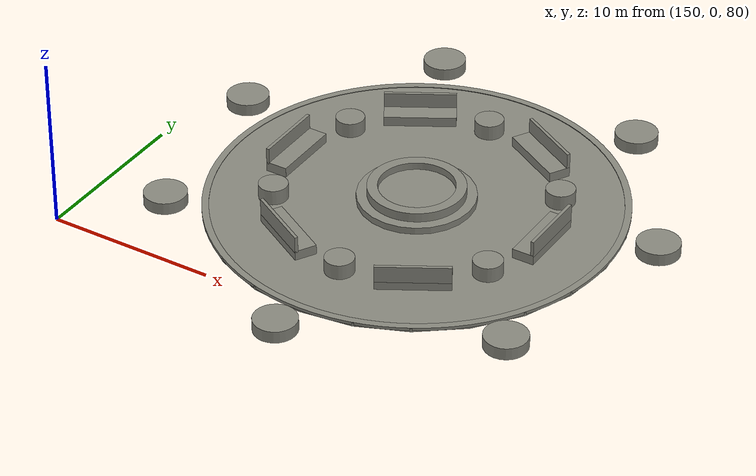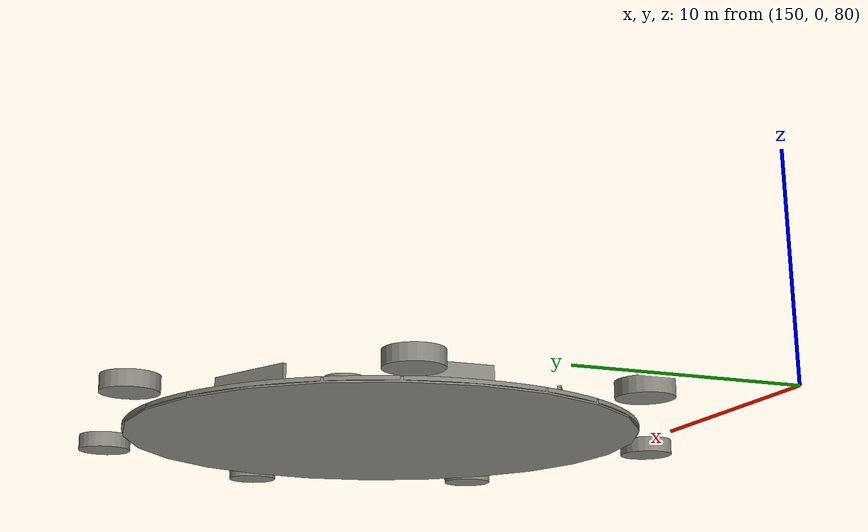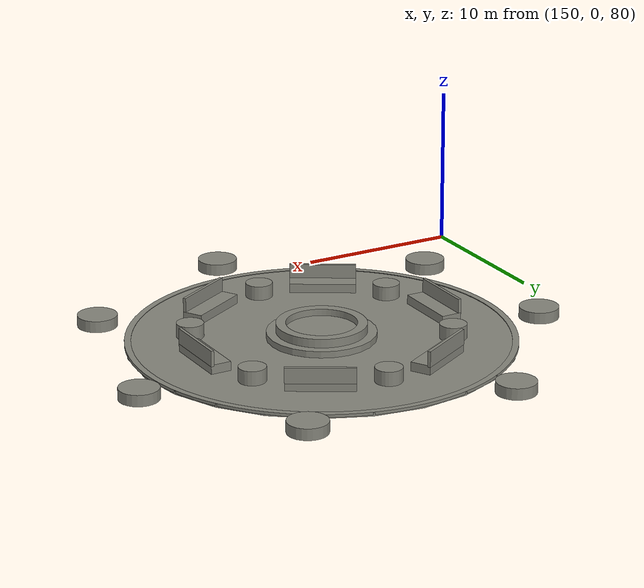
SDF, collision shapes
<?xml version='1.0' encoding='utf-8'?>
<sdf version="1.9">
  <model name="estate_fire_lounge">
    <static>true</static>
    <link name="structure">
      <visual name="visual_paving">
        <geometry>
          <mesh>
            <uri>model://estate_fire_lounge/meshes/visual/paving.dae</uri>
          </mesh>
        </geometry>
        <material>
          <ambient>0.53 0.53 0.49 1</ambient>
          <diffuse>0.53 0.53 0.49 1</diffuse>
          <specular>0.15 0.15 0.15 1</specular>
          <pbr>
            <metal>
              <roughness>0.8</roughness>
              <metalness>0.0</metalness>
            </metal>
          </pbr>
        </material>
      </visual>
      <visual name="visual_stone">
        <geometry>
          <mesh>
            <uri>model://estate_fire_lounge/meshes/visual/stone.dae</uri>
          </mesh>
        </geometry>
        <material>
          <ambient>0.42 0.43 0.39 1</ambient>
          <diffuse>0.42 0.43 0.39 1</diffuse>
          <specular>0.15 0.15 0.15 1</specular>
          <pbr>
            <metal>
              <roughness>0.8</roughness>
              <metalness>0.0</metalness>
            </metal>
          </pbr>
        </material>
      </visual>
      <visual name="visual_ivory">
        <geometry>
          <mesh>
            <uri>model://estate_fire_lounge/meshes/visual/ivory.dae</uri>
          </mesh>
        </geometry>
        <material>
          <ambient>0.88 0.87 0.81 1</ambient>
          <diffuse>0.88 0.87 0.81 1</diffuse>
          <specular>0.15 0.15 0.15 1</specular>
          <pbr>
            <metal>
              <roughness>0.8</roughness>
              <metalness>0.0</metalness>
            </metal>
          </pbr>
        </material>
      </visual>
      <visual name="visual_charcoal">
        <geometry>
          <mesh>
            <uri>model://estate_fire_lounge/meshes/visual/charcoal.dae</uri>
          </mesh>
        </geometry>
        <material>
          <ambient>0.045 0.054 0.06 1</ambient>
          <diffuse>0.045 0.054 0.06 1</diffuse>
          <specular>0.15 0.15 0.15 1</specular>
          <pbr>
            <metal>
              <roughness>0.8</roughness>
              <metalness>0.0</metalness>
            </metal>
          </pbr>
        </material>
      </visual>
      <visual name="visual_wood">
        <geometry>
          <mesh>
            <uri>model://estate_fire_lounge/meshes/visual/wood.dae</uri>
          </mesh>
        </geometry>
        <material>
          <ambient>0.3 0.18 0.095 1</ambient>
          <diffuse>0.3 0.18 0.095 1</diffuse>
          <specular>0.15 0.15 0.15 1</specular>
          <pbr>
            <metal>
              <roughness>0.8</roughness>
              <metalness>0.0</metalness>
            </metal>
          </pbr>
        </material>
      </visual>
      <visual name="visual_dark_fabric">
        <geometry>
          <mesh>
            <uri>model://estate_fire_lounge/meshes/visual/dark_fabric.dae</uri>
          </mesh>
        </geometry>
        <material>
          <ambient>0.095 0.12 0.14 1</ambient>
          <diffuse>0.095 0.12 0.14 1</diffuse>
          <specular>0.15 0.15 0.15 1</specular>
          <pbr>
            <metal>
              <roughness>0.8</roughness>
              <metalness>0.0</metalness>
            </metal>
          </pbr>
        </material>
      </visual>
      <visual name="visual_fabric">
        <geometry>
          <mesh>
            <uri>model://estate_fire_lounge/meshes/visual/fabric.dae</uri>
          </mesh>
        </geometry>
        <material>
          <ambient>0.7 0.64 0.52 1</ambient>
          <diffuse>0.7 0.64 0.52 1</diffuse>
          <specular>0.15 0.15 0.15 1</specular>
          <pbr>
            <metal>
              <roughness>0.8</roughness>
              <metalness>0.0</metalness>
            </metal>
          </pbr>
        </material>
      </visual>
      <visual name="visual_fire">
        <geometry>
          <mesh>
            <uri>model://estate_fire_lounge/meshes/visual/fire.dae</uri>
          </mesh>
        </geometry>
        <material>
          <ambient>1 0.34 0.025 1</ambient>
          <diffuse>1 0.34 0.025 1</diffuse>
          <specular>0.15 0.15 0.15 1</specular>
          <emissive>0.55 0.187 0.01375 1</emissive>
          <pbr>
            <metal>
              <roughness>0.8</roughness>
              <metalness>0.0</metalness>
            </metal>
          </pbr>
        </material>
      </visual>
      <visual name="visual_grass_dark">
        <geometry>
          <mesh>
            <uri>model://estate_fire_lounge/meshes/visual/grass_dark.dae</uri>
          </mesh>
        </geometry>
        <material>
          <ambient>0.14 0.22 0.085 1</ambient>
          <diffuse>0.14 0.22 0.085 1</diffuse>
          <specular>0.15 0.15 0.15 1</specular>
          <pbr>
            <metal>
              <roughness>0.8</roughness>
              <metalness>0.0</metalness>
            </metal>
          </pbr>
        </material>
      </visual>
      <visual name="visual_leaf2">
        <geometry>
          <mesh>
            <uri>model://estate_fire_lounge/meshes/visual/leaf2.dae</uri>
          </mesh>
        </geometry>
        <material>
          <ambient>0.15 0.235 0.105 1</ambient>
          <diffuse>0.15 0.235 0.105 1</diffuse>
          <specular>0.15 0.15 0.15 1</specular>
          <pbr>
            <metal>
              <roughness>0.8</roughness>
              <metalness>0.0</metalness>
            </metal>
          </pbr>
        </material>
      </visual>
      <visual name="visual_rock">
        <geometry>
          <mesh>
            <uri>model://estate_fire_lounge/meshes/visual/rock.dae</uri>
          </mesh>
        </geometry>
        <material>
          <ambient>0.34 0.355 0.32 1</ambient>
          <diffuse>0.34 0.355 0.32 1</diffuse>
          <specular>0.15 0.15 0.15 1</specular>
          <pbr>
            <metal>
              <roughness>0.8</roughness>
              <metalness>0.0</metalness>
            </metal>
          </pbr>
        </material>
      </visual>
      <visual name="visual_white">
        <geometry>
          <mesh>
            <uri>model://estate_fire_lounge/meshes/visual/white.dae</uri>
          </mesh>
        </geometry>
        <material>
          <ambient>0.93 0.93 0.89 1</ambient>
          <diffuse>0.93 0.93 0.89 1</diffuse>
          <specular>0.15 0.15 0.15 1</specular>
          <pbr>
            <metal>
              <roughness>0.8</roughness>
              <metalness>0.0</metalness>
            </metal>
          </pbr>
        </material>
      </visual>
      <collision name="fire_lounge_terrace">
        <geometry>
          <cylinder>
            <radius>12</radius>
            <length>0.22</length>
          </cylinder>
        </geometry>
        <pose>166 12 80.05 0 0 0</pose>
      </collision>
      <collision name="lounge_border">
        <geometry>
          <mesh>
            <uri>model://estate_fire_lounge/meshes/collision/lounge_border.dae</uri>
          </mesh>
        </geometry>
      </collision>
      <collision name="fire_pit_plinth">
        <geometry>
          <cylinder>
            <radius>3.4</radius>
            <length>0.5</length>
          </cylinder>
        </geometry>
        <pose>166 12 80.32 0 0 0</pose>
      </collision>
      <collision name="fire_pit_bowl">
        <geometry>
          <mesh>
            <uri>model://estate_fire_lounge/meshes/collision/fire_pit_bowl.dae</uri>
          </mesh>
        </geometry>
      </collision>
      <collision name="fire_pit_coals">
        <geometry>
          <cylinder>
            <radius>2.2</radius>
            <length>0.18</length>
          </cylinder>
        </geometry>
        <pose>166 12 80.61 0 0 0</pose>
      </collision>
      <collision name="fireside_sofa_0_base">
        <geometry>
          <box>
            <size>4.2 1.3 0.58</size>
          </box>
        </geometry>
        <pose>174 12 80.51 0 0 -1.5708</pose>
      </collision>
      <collision name="fireside_sofa_0_back">
        <geometry>
          <box>
            <size>4.2 0.19 1</size>
          </box>
        </geometry>
        <pose>174.56 12 81.2 0 0 -1.5708</pose>
      </collision>
      <collision name="fireside_table_0">
        <geometry>
          <cylinder>
            <radius>0.85</radius>
            <length>0.9</length>
          </cylinder>
        </geometry>
        <pose>172.928 16 80.63 0 0 0</pose>
      </collision>
      <collision name="fireside_sofa_1_base">
        <geometry>
          <box>
            <size>4.2 1.3 0.58</size>
          </box>
        </geometry>
        <pose>170 18.9282 80.51 0 0 -0.523599</pose>
      </collision>
      <collision name="fireside_sofa_1_back">
        <geometry>
          <box>
            <size>4.2 0.19 1</size>
          </box>
        </geometry>
        <pose>170.28 19.4132 81.2 0 0 -0.523599</pose>
      </collision>
      <collision name="fireside_table_1">
        <geometry>
          <cylinder>
            <radius>0.85</radius>
            <length>0.9</length>
          </cylinder>
        </geometry>
        <pose>166 20 80.63 0 0 0</pose>
      </collision>
      <collision name="fireside_sofa_2_base">
        <geometry>
          <box>
            <size>4.2 1.3 0.58</size>
          </box>
        </geometry>
        <pose>162 18.9282 80.51 0 0 0.523599</pose>
      </collision>
      <collision name="fireside_sofa_2_back">
        <geometry>
          <box>
            <size>4.2 0.19 1</size>
          </box>
        </geometry>
        <pose>161.72 19.4132 81.2 0 0 0.523599</pose>
      </collision>
      <collision name="fireside_table_2">
        <geometry>
          <cylinder>
            <radius>0.85</radius>
            <length>0.9</length>
          </cylinder>
        </geometry>
        <pose>159.072 16 80.63 0 0 0</pose>
      </collision>
      <collision name="fireside_sofa_3_base">
        <geometry>
          <box>
            <size>4.2 1.3 0.58</size>
          </box>
        </geometry>
        <pose>158 12 80.51 0 0 1.5708</pose>
      </collision>
      <collision name="fireside_sofa_3_back">
        <geometry>
          <box>
            <size>4.2 0.19 1</size>
          </box>
        </geometry>
        <pose>157.44 12 81.2 0 0 1.5708</pose>
      </collision>
      <collision name="fireside_table_3">
        <geometry>
          <cylinder>
            <radius>0.85</radius>
            <length>0.9</length>
          </cylinder>
        </geometry>
        <pose>159.072 8 80.63 0 0 0</pose>
      </collision>
      <collision name="fireside_sofa_4_base">
        <geometry>
          <box>
            <size>4.2 1.3 0.58</size>
          </box>
        </geometry>
        <pose>162 5.0718 80.51 0 0 2.61799</pose>
      </collision>
      <collision name="fireside_sofa_4_back">
        <geometry>
          <box>
            <size>4.2 0.19 1</size>
          </box>
        </geometry>
        <pose>161.72 4.58682 81.2 0 0 2.61799</pose>
      </collision>
      <collision name="fireside_table_4">
        <geometry>
          <cylinder>
            <radius>0.85</radius>
            <length>0.9</length>
          </cylinder>
        </geometry>
        <pose>166 4 80.63 0 0 0</pose>
      </collision>
      <collision name="fireside_sofa_5_base">
        <geometry>
          <box>
            <size>4.2 1.3 0.58</size>
          </box>
        </geometry>
        <pose>170 5.0718 80.51 0 0 3.66519</pose>
      </collision>
      <collision name="fireside_sofa_5_back">
        <geometry>
          <box>
            <size>4.2 0.19 1</size>
          </box>
        </geometry>
        <pose>170.28 4.58682 81.2 0 0 3.66519</pose>
      </collision>
      <collision name="fireside_table_5">
        <geometry>
          <cylinder>
            <radius>0.85</radius>
            <length>0.9</length>
          </cylinder>
        </geometry>
        <pose>172.928 8 80.63 0 0 0</pose>
      </collision>
      <collision name="lounge_planter_0">
        <geometry>
          <cylinder>
            <radius>1.25</radius>
            <length>0.72</length>
          </cylinder>
        </geometry>
        <pose>179.721 14.7814 80.36 0 0 0</pose>
      </collision>
      <collision name="lounge_planter_1">
        <geometry>
          <cylinder>
            <radius>1.25</radius>
            <length>0.72</length>
          </cylinder>
        </geometry>
        <pose>173.564 23.7806 80.36 0 0 0</pose>
      </collision>
      <collision name="lounge_planter_2">
        <geometry>
          <cylinder>
            <radius>1.25</radius>
            <length>0.72</length>
          </cylinder>
        </geometry>
        <pose>160.174 24.7302 80.36 0 0 0</pose>
      </collision>
      <collision name="lounge_planter_3">
        <geometry>
          <cylinder>
            <radius>1.25</radius>
            <length>0.72</length>
          </cylinder>
        </geometry>
        <pose>152.407 15.3495 80.36 0 0 0</pose>
      </collision>
      <collision name="lounge_planter_4">
        <geometry>
          <cylinder>
            <radius>1.25</radius>
            <length>0.72</length>
          </cylinder>
        </geometry>
        <pose>154.127 4.58229 80.36 0 0 0</pose>
      </collision>
      <collision name="lounge_planter_5">
        <geometry>
          <cylinder>
            <radius>1.25</radius>
            <length>0.72</length>
          </cylinder>
        </geometry>
        <pose>165.827 -1.99893 80.36 0 0 0</pose>
      </collision>
      <collision name="lounge_planter_6">
        <geometry>
          <cylinder>
            <radius>1.25</radius>
            <length>0.72</length>
          </cylinder>
        </geometry>
        <pose>176.858 3.16227 80.36 0 0 0</pose>
      </collision>
    </link>
  </model>
</sdf>
